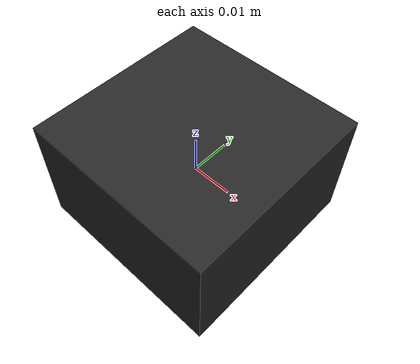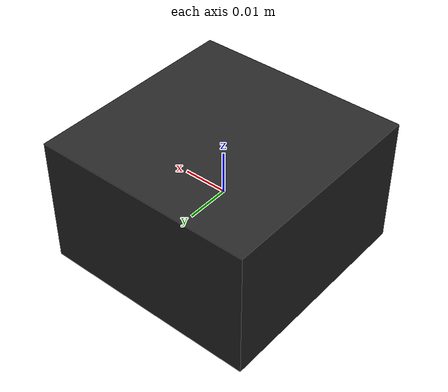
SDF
<?xml version="1.0"?>
<sdf version="1.9">
  <model name="gimbal_nadir">
    <link name="base_link">
      <inertial>
        <mass>0.05</mass>
        <inertia>
          <ixx>0.00001</ixx>
          <ixy>0</ixy>
          <ixz>0</ixz>
          <iyy>0.00001</iyy>
          <iyz>0</iyz>
          <izz>0.00001</izz>
        </inertia>
      </inertial>

      <!-- Small visible body so the pod (and its down-facing lens) is locatable
           in the GUI. No collision: a downward camera should never collide. -->
      <visual name="housing_visual">
        <geometry>
          <box>
            <size>0.05 0.05 0.03</size>
          </box>
        </geometry>
        <material>
          <ambient>0.15 0.15 0.15 1</ambient>
          <diffuse>0.15 0.15 0.15 1</diffuse>
          <specular>0.05 0.05 0.05 1</specular>
        </material>
      </visual>
      <visual name="lens_visual">
        <pose>0 0 -0.018 0 0 0</pose>
        <geometry>
          <cylinder>
            <radius>0.012</radius>
            <length>0.01</length>
          </cylinder>
        </geometry>
        <material>
          <ambient>0.0 0.0 0.05 1</ambient>
          <diffuse>0.0 0.0 0.1 1</diffuse>
          <specular>0.4 0.4 0.5 1</specular>
        </material>
      </visual>

      <sensor name="camera" type="camera">
        <gz_frame_id>gimbal_nadir/base_link/camera</gz_frame_id>
        <pose degrees="true">0 0 0 -90 90 0</pose>
        <topic>/drone/camera</topic>
        <update_rate>15</update_rate>
        <always_on>1</always_on>
        <visualize>1</visualize>
        <camera>
          <horizontal_fov>1.2582621436</horizontal_fov>
          <image>
            <width>1920</width>
            <height>1080</height>
            <format>R8G8B8</format>
          </image>
          <clip>
            <near>0.05</near>
            <far>2000</far>
          </clip>
          <lens>
            <intrinsics>
              <fx>1319.071398</fx>
              <fy>1407.4984</fy>
              <cx>870.93493</cx>
              <cy>533.095324</cy>
              <s>0</s>
            </intrinsics>
          </lens>
          <distortion>
            <k1>0.4353804318</k1>
            <k2>-0.2461908227</k2>
            <k3>0.111509133</k3>
            <p1>-0.0688481028</p1>
            <p2>-0.0508214506</p2>
            <center>0.5 0.5</center>
          </distortion>
        </camera>
      </sensor>
    </link>
  </model>
</sdf>
